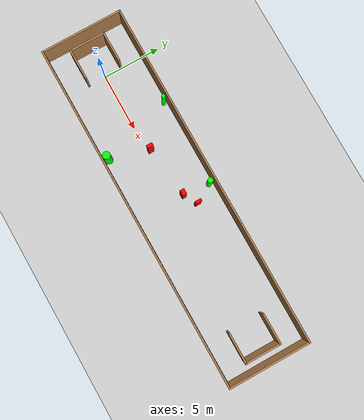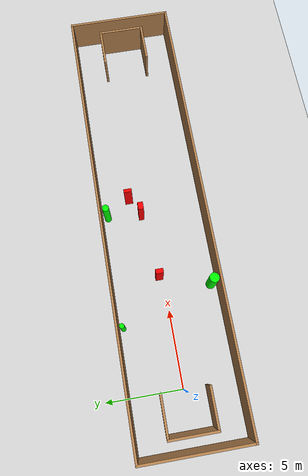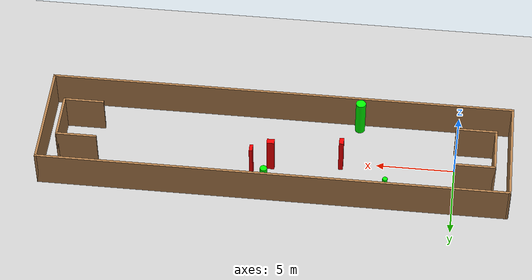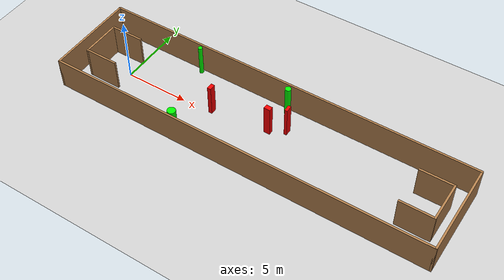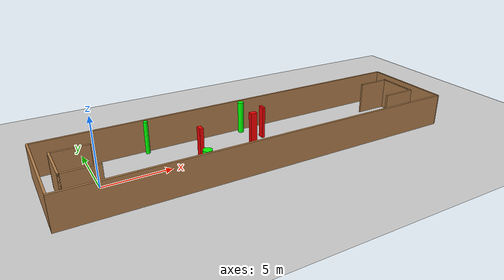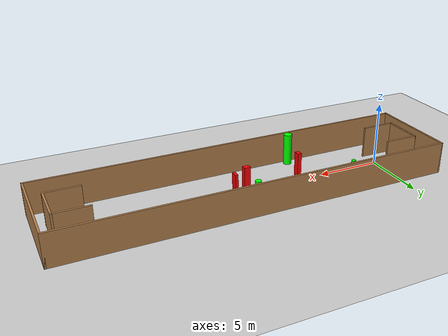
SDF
<sdf version="1.7">
 <world name="default">
  <light name="sun" type="directional">
   <pose>0 0 10 0 -0 0</pose>
   <diffuse>0.8 0.8 0.8 1</diffuse>
   <specular>0.2 0.2 0.2 1</specular>
   <attenuation>
    <range>1000</range>
    <constant>0.9</constant>
    <linear>0.01</linear>
    <quadratic>0.001</quadratic>
   </attenuation>
   <direction>-0.5 0.1 -0.9</direction>
   <spot><inner_angle>0</inner_angle><outer_angle>0</outer_angle><falloff>0</falloff></spot>
  </light>
  <model name="ground_plane">
   <static>1</static>
   <link name="link">
    <collision name="collision">
     <geometry><plane><normal>0 0 1</normal><size>100 100</size></plane></geometry>
     <surface>
      <contact><collide_bitmask>65535</collide_bitmask></contact>
      <friction><ode><mu>100</mu><mu2>50</mu2></ode></friction>
     </surface>
    </collision>
    <visual name="visual">
     <cast_shadows>0</cast_shadows>
     <geometry><plane><normal>0 0 1</normal><size>100 100</size></plane></geometry>
     <material>
      <script><uri>file://media/materials/scripts/gazebo.material</uri><name>Gazebo/Grey</name></script>
     </material>
    </visual>
   </link>
  </model>
  <gravity>0 0 -9.8</gravity>
  <magnetic_field>6e-06 2.3e-05 -4.2e-05</magnetic_field>
  <atmosphere type="adiabatic"/>
  <physics type="ode">
   <max_step_size>0.001</max_step_size>
   <real_time_factor>1</real_time_factor>
   <real_time_update_rate>1000</real_time_update_rate>
  </physics>
  <scene><ambient>0.4 0.4 0.4 1</ambient><background>0.7 0.7 0.7 1</background><shadows>1</shadows></scene>
  <spherical_coordinates>
   <surface_model>EARTH_WGS84</surface_model>
   <latitude_deg>0</latitude_deg>
   <longitude_deg>0</longitude_deg>
   <elevation>0</elevation>
   <heading_deg>0</heading_deg>
  </spherical_coordinates>
  <model name="my_base_walls">
   <link name="Wall_0">
    <collision name="Wall_0_Collision">
     <geometry><box><size>7.15 0.15 2.5</size></box></geometry>
     <pose>0 0 1.25 0 -0 0</pose>
    </collision>
    <visual name="Wall_0_Visual">
     <pose>0 0 1.25 0 -0 0</pose>
     <geometry><box><size>7.15 0.15 2.5</size></box></geometry>
     <material>
      <script><uri>file://media/materials/scripts/gazebo.material</uri><name>Gazebo/Wood</name></script>
      <ambient>1 1 1 1</ambient>
     </material>
     <meta><layer>0</layer></meta>
    </visual>
    <pose>-15 0 0 0 -0 1.5708</pose>
   </link>
   <link name="Wall_10">
    <collision name="Wall_10_Collision">
     <geometry><box><size>2.65 0.15 2.5</size></box></geometry>
     <pose>0 0 1.25 0 -0 0</pose>
    </collision>
    <visual name="Wall_10_Visual">
     <pose>0 0 1.25 0 -0 0</pose>
     <geometry><box><size>2.65 0.15 2.5</size></box></geometry>
     <material>
      <script><uri>file://media/materials/scripts/gazebo.material</uri><name>Gazebo/Wood</name></script>
      <ambient>1 1 1 1</ambient>
     </material>
     <meta><layer>0</layer></meta>
    </visual>
    <pose>-12.75 -1.5 0 0 -0 0</pose>
   </link>
   <link name="Wall_12">
    <collision name="Wall_12_Collision">
     <geometry><box><size>2.65 0.15 2.5</size></box></geometry>
     <pose>0 0 1.25 0 -0 0</pose>
    </collision>
    <visual name="Wall_12_Visual">
     <pose>0 0 1.25 0 -0 0</pose>
     <geometry><box><size>2.65 0.15 2.5</size></box></geometry>
     <material>
      <script><uri>file://media/materials/scripts/gazebo.material</uri><name>Gazebo/Wood</name></script>
      <ambient>1 1 1 1</ambient>
     </material>
     <meta><layer>0</layer></meta>
    </visual>
    <pose>-12.75 1.5 0 0 -0 0</pose>
   </link>
   <link name="Wall_14">
    <collision name="Wall_14_Collision">
     <geometry><box><size>3.15 0.15 2.5</size></box></geometry>
     <pose>0 0 1.25 0 -0 0</pose>
    </collision>
    <visual name="Wall_14_Visual">
     <pose>0 0 1.25 0 -0 0</pose>
     <geometry><box><size>3.15 0.15 2.5</size></box></geometry>
     <material>
      <script><uri>file://media/materials/scripts/gazebo.material</uri><name>Gazebo/Wood</name></script>
      <ambient>1 1 1 1</ambient>
     </material>
     <meta><layer>0</layer></meta>
    </visual>
    <pose>14 0 0 0 -0 -1.5708</pose>
   </link>
   <link name="Wall_15">
    <collision name="Wall_15_Collision">
     <geometry><box><size>2.65 0.15 2.5</size></box></geometry>
     <pose>0 0 1.25 0 -0 0</pose>
    </collision>
    <visual name="Wall_15_Visual">
     <pose>0 0 1.25 0 -0 0</pose>
     <geometry><box><size>2.65 0.15 2.5</size></box></geometry>
     <material>
      <script><uri>file://media/materials/scripts/gazebo.material</uri><name>Gazebo/Wood</name></script>
      <ambient>1 1 1 1</ambient>
     </material>
     <meta><layer>0</layer></meta>
    </visual>
    <pose>12.75 -1.5 0 0 -0 3.14159</pose>
   </link>
   <link name="Wall_17">
    <collision name="Wall_17_Collision">
     <geometry><box><size>2.65 0.15 2.5</size></box></geometry>
     <pose>0 0 1.25 0 -0 0</pose>
    </collision>
    <visual name="Wall_17_Visual">
     <pose>0 0 1.25 0 -0 0</pose>
     <geometry><box><size>2.65 0.15 2.5</size></box></geometry>
     <material>
      <script><uri>file://media/materials/scripts/gazebo.material</uri><name>Gazebo/Wood</name></script>
      <ambient>1 1 1 1</ambient>
     </material>
     <meta><layer>0</layer></meta>
    </visual>
    <pose>12.75 1.5 0 0 -0 3.14159</pose>
   </link>
   <link name="Wall_2">
    <collision name="Wall_2_Collision">
     <geometry><box><size>30.15 0.15 2.5</size></box></geometry>
     <pose>0 0 1.25 0 -0 0</pose>
    </collision>
    <visual name="Wall_2_Visual">
     <pose>0 0 1.25 0 -0 0</pose>
     <geometry><box><size>30.15 0.15 2.5</size></box></geometry>
     <material>
      <script><uri>file://media/materials/scripts/gazebo.material</uri><name>Gazebo/Wood</name></script>
      <ambient>1 1 1 1</ambient>
     </material>
     <meta><layer>0</layer></meta>
    </visual>
    <pose>-0 -3.5 0 0 -0 0</pose>
   </link>
   <link name="Wall_4">
    <collision name="Wall_4_Collision">
     <geometry><box><size>30.15 0.15 2.5</size></box></geometry>
     <pose>0 0 1.25 0 -0 0</pose>
    </collision>
    <visual name="Wall_4_Visual">
     <pose>0 0 1.25 0 -0 0</pose>
     <geometry><box><size>30.15 0.15 2.5</size></box></geometry>
     <material>
      <script><uri>file://media/materials/scripts/gazebo.material</uri><name>Gazebo/Wood</name></script>
      <ambient>1 1 1 1</ambient>
     </material>
     <meta><layer>0</layer></meta>
    </visual>
    <pose>-0 3.5 0 0 -0 0</pose>
   </link>
   <link name="Wall_6">
    <collision name="Wall_6_Collision">
     <geometry><box><size>7.15 0.15 2.5</size></box></geometry>
     <pose>0 0 1.25 0 -0 0</pose>
    </collision>
    <visual name="Wall_6_Visual">
     <pose>0 0 1.25 0 -0 0</pose>
     <geometry><box><size>7.15 0.15 2.5</size></box></geometry>
     <material>
      <script><uri>file://media/materials/scripts/gazebo.material</uri><name>Gazebo/Wood</name></script>
      <ambient>1 1 1 1</ambient>
     </material>
     <meta><layer>0</layer></meta>
    </visual>
    <pose>15 0 0 0 -0 -1.5708</pose>
   </link>
   <link name="Wall_9">
    <collision name="Wall_9_Collision">
     <geometry><box><size>3.15 0.15 2.5</size></box></geometry>
     <pose>0 0 1.25 0 -0 0</pose>
    </collision>
    <visual name="Wall_9_Visual">
     <pose>0 0 1.25 0 -0 0</pose>
     <geometry><box><size>3.15 0.15 2.5</size></box></geometry>
     <material>
      <script><uri>file://media/materials/scripts/gazebo.material</uri><name>Gazebo/Wood</name></script>
      <ambient>1 1 1 1</ambient>
     </material>
     <meta><layer>0</layer></meta>
    </visual>
    <pose>-14 0 0 0 -0 -1.5708</pose>
   </link>
   <static>1</static>
   <pose>11.5 0 0 0 -0 0</pose>
  </model>
  <model name="cylinder1">
   <static>1</static>
   <link name="link">
    <inertial>
     <mass>1</mass>
     <inertia><ixx>0.5</ixx><ixy>0</ixy><ixz>0</ixz><iyy>0.5</iyy><iyz>0</iyz><izz>1</izz></inertia>
    </inertial>
    <collision name="collision">
     <geometry><cylinder><radius>0.3227158688895273</radius><length>2.5</length></cylinder></geometry>
    </collision>
    <visual name="visual">
     <geometry><cylinder><radius>0.3227158688895273</radius><length>2.5</length></cylinder></geometry>
     <material>
      <ambient>0 1 0 1</ambient>
      <diffuse>0 1 0 1</diffuse>
      <specular>0.1 0.1 0.1 1</specular>
      <emissive>0 0 0 0</emissive>
     </material>
    </visual>
   </link>
   <pose>6.3038325329199 -3.0597781281504934 1.25 0 0 0</pose>
  </model>
  <model name="cylinder2">
   <static>1</static>
   <link name="link">
    <inertial>
     <mass>1</mass>
     <inertia><ixx>0.5</ixx><ixy>0</ixy><ixz>0</ixz><iyy>0.5</iyy><iyz>0</iyz><izz>1</izz></inertia>
    </inertial>
    <collision name="collision">
     <geometry><cylinder><radius>0.1594283126093182</radius><length>2.5</length></cylinder></geometry>
    </collision>
    <visual name="visual">
     <geometry><cylinder><radius>0.1594283126093182</radius><length>2.5</length></cylinder></geometry>
     <material>
      <ambient>0 1 0 1</ambient>
      <diffuse>0 1 0 1</diffuse>
      <specular>0.1 0.1 0.1 1</specular>
      <emissive>0 0 0 0</emissive>
     </material>
    </visual>
   </link>
   <pose>4.335590305324299 3.157997353745114 1.25 0 0 0</pose>
  </model>
  <model name="cylinder3">
   <static>1</static>
   <link name="link">
    <inertial>
     <mass>1</mass>
     <inertia><ixx>0.5</ixx><ixy>0</ixy><ixz>0</ixz><iyy>0.5</iyy><iyz>0</iyz><izz>1</izz></inertia>
    </inertial>
    <collision name="collision">
     <geometry><cylinder><radius>0.2274376447126687</radius><length>2.5</length></cylinder></geometry>
    </collision>
    <visual name="visual">
     <geometry><cylinder><radius>0.2274376447126687</radius><length>2.5</length></cylinder></geometry>
     <material>
      <ambient>0 1 0 1</ambient>
      <diffuse>0 1 0 1</diffuse>
      <specular>0.1 0.1 0.1 1</specular>
      <emissive>0 0 0 0</emissive>
     </material>
    </visual>
   </link>
   <pose>12.006851055854831 3.075239485239374 1.25 0 0 0</pose>
  </model>
  <model name="box1">
   <static>1</static>
   <link name="link">
    <inertial>
     <mass>1</mass>
     <inertia><ixx>0.083</ixx><ixy>0</ixy><ixz>0</ixz><iyy>0.083</iyy><iyz>0</iyz><izz>0.083</izz></inertia>
    </inertial>
    <collision name="collision">
     <geometry><box><size>0.49284207040073374 0.3592954066614566 2.5</size></box></geometry>
    </collision>
    <visual name="visual">
     <geometry><box><size>0.49284207040073374 0.3592954066614566 2.5</size></box></geometry>
     <material>
      <ambient>1 0 0 1</ambient>
      <diffuse>1 0 0 1</diffuse>
      <specular>0.1 0.1 0.1 1</specular>
      <emissive>0 0 0 0</emissive>
     </material>
    </visual>
    <sensor name="my_contact" type="contact">
     <contact><collision>box_collision</collision><topic>__default_topic__</topic></contact>
    </sensor>
   </link>
   <pose>11.79398567960871 0.7749783462863098 1.25 0 0 0</pose>
  </model>
  <model name="box2">
   <static>1</static>
   <link name="link">
    <inertial>
     <mass>1</mass>
     <inertia><ixx>0.083</ixx><ixy>0</ixy><ixz>0</ixz><iyy>0.083</iyy><iyz>0</iyz><izz>0.083</izz></inertia>
    </inertial>
    <collision name="collision">
     <geometry><box><size>0.21898600633351092 0.5276718760612239 2.5</size></box></geometry>
    </collision>
    <visual name="visual">
     <geometry><box><size>0.21898600633351092 0.5276718760612239 2.5</size></box></geometry>
     <material>
      <ambient>1 0 0 1</ambient>
      <diffuse>1 0 0 1</diffuse>
      <specular>0.1 0.1 0.1 1</specular>
      <emissive>0 0 0 0</emissive>
     </material>
    </visual>
    <sensor name="my_contact" type="contact">
     <contact><collision>box_collision</collision><topic>__default_topic__</topic></contact>
    </sensor>
   </link>
   <pose>12.97604108624846 1.45173449359966 1.25 0 0 0</pose>
  </model>
  <model name="box3">
   <static>1</static>
   <link name="link">
    <inertial>
     <mass>1</mass>
     <inertia><ixx>0.083</ixx><ixy>0</ixy><ixz>0</ixz><iyy>0.083</iyy><iyz>0</iyz><izz>0.083</izz></inertia>
    </inertial>
    <collision name="collision">
     <geometry><box><size>0.29414181644602583 0.4945522398413265 2.5</size></box></geometry>
    </collision>
    <visual name="visual">
     <geometry><box><size>0.29414181644602583 0.4945522398413265 2.5</size></box></geometry>
     <material>
      <ambient>1 0 0 1</ambient>
      <diffuse>1 0 0 1</diffuse>
      <specular>0.1 0.1 0.1 1</specular>
      <emissive>0 0 0 0</emissive>
     </material>
    </visual>
    <sensor name="my_contact" type="contact">
     <contact><collision>box_collision</collision><topic>__default_topic__</topic></contact>
    </sensor>
   </link>
   <pose>7.296192533619719 0.2919246829992286 1.25 0 0 0</pose>
  </model>
 </world>
</sdf>
